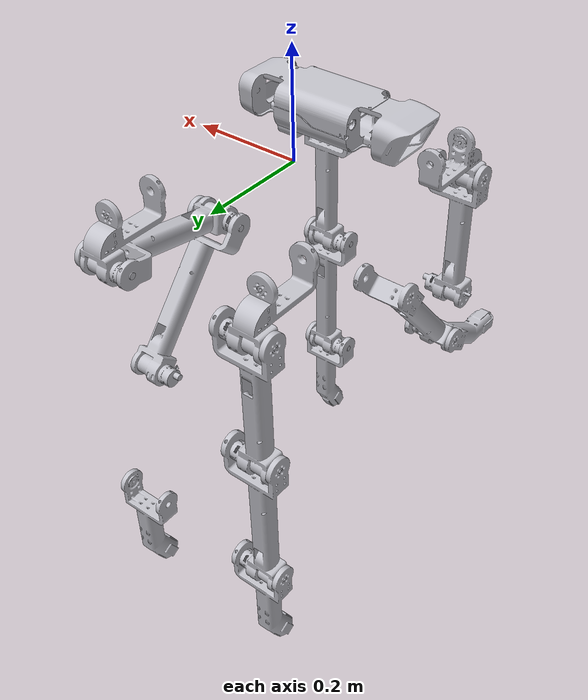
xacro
<?xml version="1.0" ?>
<robot name="quadruped" xmlns:xacro="http://www.ros.org/wiki/xacro">

<xacro:include filename="$(find quadruped_description)/urdf/materials.xacro" />
<xacro:include filename="$(find quadruped_description)/urdf/quadruped.trans" />
<xacro:include filename="$(find quadruped_description)/urdf/quadruped.gazebo" />
<link name="base_link">
  <inertial>
    <origin rpy="0 0 0" xyz="-3.431576713324414e-17 2.610567498014317e-16 0.04324730691236673"/>
    <mass value="29.384744866709624"/>
    <inertia ixx="1.089951" ixy="-1.1e-05" ixz="0.0" iyy="0.445316" iyz="0.0" izz="1.461435"/>
  </inertial>
  <visual>
    <origin rpy="0 0 0" xyz="0 0 0"/>
    <geometry>
      <mesh filename="package://quadruped_description/meshes/base_link.stl" scale="0.001 0.001 0.001"/>
    </geometry>
    <material name="silver_default"/>
  </visual>
  <collision>
    <origin rpy="0 0 0" xyz="0 0 0"/>
    <geometry>
      <mesh filename="package://quadruped_description/meshes/base_link.stl" scale="0.001 0.001 0.001"/>
    </geometry>
  </collision>
</link>

<link name="link1FrontRight_1">
  <inertial>
    <origin rpy="0 0 0" xyz="0.006657525670384218 -0.008851869868314433 -0.0682785415205543"/>
    <mass value="0.6959462012084651"/>
    <inertia ixx="0.001039" ixy="4.5e-05" ixz="5.5e-05" iyy="0.000651" iyz="-0.000304" izz="0.000853"/>
  </inertial>
  <visual>
    <origin rpy="0 0 0" xyz="0.155 0.272 0.028"/>
    <geometry>
      <mesh filename="package://quadruped_description/meshes/link1FrontRight_1.stl" scale="0.001 0.001 0.001"/>
    </geometry>
    <material name="silver_default"/>
  </visual>
  <collision>
    <origin rpy="0 0 0" xyz="0.155 0.272 0.028"/>
    <geometry>
      <mesh filename="package://quadruped_description/meshes/link1FrontRight_1.stl" scale="0.001 0.001 0.001"/>
    </geometry>
  </collision>
</link>

<link name="link1BackLeft_1">
  <inertial>
    <origin rpy="0 0 0" xyz="-0.006657525670384523 0.008851869868314655 -0.068278541520555"/>
    <mass value="0.6959462012084651"/>
    <inertia ixx="0.001039" ixy="4.5e-05" ixz="-5.5e-05" iyy="0.000651" iyz="0.000304" izz="0.000853"/>
  </inertial>
  <visual>
    <origin rpy="0 0 0" xyz="-0.155 -0.272 0.028"/>
    <geometry>
      <mesh filename="package://quadruped_description/meshes/link1BackLeft_1.stl" scale="0.001 0.001 0.001"/>
    </geometry>
    <material name="silver_default"/>
  </visual>
  <collision>
    <origin rpy="0 0 0" xyz="-0.155 -0.272 0.028"/>
    <geometry>
      <mesh filename="package://quadruped_description/meshes/link1BackLeft_1.stl" scale="0.001 0.001 0.001"/>
    </geometry>
  </collision>
</link>

<link name="link1FrontLeft_1">
  <inertial>
    <origin rpy="0 0 0" xyz="-0.006632742807460124 -0.008892294774752285 -0.06827854152055422"/>
    <mass value="0.6959462012084651"/>
    <inertia ixx="0.00104" ixy="-4.6e-05" ixz="-5.5e-05" iyy="0.000651" iyz="-0.000304" izz="0.000853"/>
  </inertial>
  <visual>
    <origin rpy="0 0 0" xyz="-0.155 0.272 0.028"/>
    <geometry>
      <mesh filename="package://quadruped_description/meshes/link1FrontLeft_1.stl" scale="0.001 0.001 0.001"/>
    </geometry>
    <material name="silver_default"/>
  </visual>
  <collision>
    <origin rpy="0 0 0" xyz="-0.155 0.272 0.028"/>
    <geometry>
      <mesh filename="package://quadruped_description/meshes/link1FrontLeft_1.stl" scale="0.001 0.001 0.001"/>
    </geometry>
  </collision>
</link>

<link name="link1BackRight_1">
  <inertial>
    <origin rpy="0 0 0" xyz="0.006632742807465342 0.008892294774752674 -0.06827854152054838"/>
    <mass value="0.6959462012084651"/>
    <inertia ixx="0.00104" ixy="-4.6e-05" ixz="5.5e-05" iyy="0.000651" iyz="0.000304" izz="0.000853"/>
  </inertial>
  <visual>
    <origin rpy="0 0 0" xyz="0.155 -0.272 0.028"/>
    <geometry>
      <mesh filename="package://quadruped_description/meshes/link1BackRight_1.stl" scale="0.001 0.001 0.001"/>
    </geometry>
    <material name="silver_default"/>
  </visual>
  <collision>
    <origin rpy="0 0 0" xyz="0.155 -0.272 0.028"/>
    <geometry>
      <mesh filename="package://quadruped_description/meshes/link1BackRight_1.stl" scale="0.001 0.001 0.001"/>
    </geometry>
  </collision>
</link>

<link name="link2FrontRight_1">
  <inertial>
    <origin rpy="0 0 0" xyz="0.048356898374047996 3.830943160310074e-06 -0.2053710415322904"/>
    <mass value="0.8659841478355499"/>
    <inertia ixx="0.00672" ixy="-0.0" ixz="0.000112" iyy="0.007032" iyz="-1e-05" izz="0.000496"/>
  </inertial>
  <visual>
    <origin rpy="0 0 0" xyz="0.196988 0.2908 0.100978"/>
    <geometry>
      <mesh filename="package://quadruped_description/meshes/link2FrontRight_1.stl" scale="0.001 0.001 0.001"/>
    </geometry>
    <material name="silver_default"/>
  </visual>
  <collision>
    <origin rpy="0 0 0" xyz="0.196988 0.2908 0.100978"/>
    <geometry>
      <mesh filename="package://quadruped_description/meshes/link2FrontRight_1.stl" scale="0.001 0.001 0.001"/>
    </geometry>
  </collision>
</link>

<link name="link2BackLeft_1">
  <inertial>
    <origin rpy="0 0 0" xyz="-0.048356898374071394 -3.8309431600880295e-06 -0.20537104153228847"/>
    <mass value="0.8659841478355499"/>
    <inertia ixx="0.00672" ixy="-0.0" ixz="-0.000112" iyy="0.007032" iyz="1e-05" izz="0.000496"/>
  </inertial>
  <visual>
    <origin rpy="0 0 0" xyz="-0.196988 -0.2908 0.100978"/>
    <geometry>
      <mesh filename="package://quadruped_description/meshes/link2BackLeft_1.stl" scale="0.001 0.001 0.001"/>
    </geometry>
    <material name="silver_default"/>
  </visual>
  <collision>
    <origin rpy="0 0 0" xyz="-0.196988 -0.2908 0.100978"/>
    <geometry>
      <mesh filename="package://quadruped_description/meshes/link2BackLeft_1.stl" scale="0.001 0.001 0.001"/>
    </geometry>
  </collision>
</link>

<link name="link2FrontLeft_1">
  <inertial>
    <origin rpy="0 0 0" xyz="-0.048355899630154936 -3.830943159754963e-06 -0.20537104153228886"/>
    <mass value="0.8659841478355499"/>
    <inertia ixx="0.00672" ixy="-0.0" ixz="-0.000112" iyy="0.007032" iyz="-1.1e-05" izz="0.000496"/>
  </inertial>
  <visual>
    <origin rpy="0 0 0" xyz="-0.197012 0.2908 0.100978"/>
    <geometry>
      <mesh filename="package://quadruped_description/meshes/link2FrontLeft_1.stl" scale="0.001 0.001 0.001"/>
    </geometry>
    <material name="silver_default"/>
  </visual>
  <collision>
    <origin rpy="0 0 0" xyz="-0.197012 0.2908 0.100978"/>
    <geometry>
      <mesh filename="package://quadruped_description/meshes/link2FrontLeft_1.stl" scale="0.001 0.001 0.001"/>
    </geometry>
  </collision>
</link>

<link name="link2BackRight_1">
  <inertial>
    <origin rpy="0 0 0" xyz="0.04835589963014089 3.830943159977007e-06 -0.2053710415322857"/>
    <mass value="0.8659841478355499"/>
    <inertia ixx="0.00672" ixy="-0.0" ixz="0.000112" iyy="0.007032" iyz="1.1e-05" izz="0.000496"/>
  </inertial>
  <visual>
    <origin rpy="0 0 0" xyz="0.197012 -0.2908 0.100978"/>
    <geometry>
      <mesh filename="package://quadruped_description/meshes/link2BackRight_1.stl" scale="0.001 0.001 0.001"/>
    </geometry>
    <material name="silver_default"/>
  </visual>
  <collision>
    <origin rpy="0 0 0" xyz="0.197012 -0.2908 0.100978"/>
    <geometry>
      <mesh filename="package://quadruped_description/meshes/link2BackRight_1.stl" scale="0.001 0.001 0.001"/>
    </geometry>
  </collision>
</link>

<link name="link3FrontRight_1">
  <inertial>
    <origin rpy="0 0 0" xyz="0.048133393092814 2.7563511130757057e-06 -0.22442742342969896"/>
    <mass value="0.8975642770404472"/>
    <inertia ixx="0.00868" ixy="-0.0" ixz="0.000137" iyy="0.008993" iyz="1.4e-05" izz="0.000506"/>
  </inertial>
  <visual>
    <origin rpy="0 0 0" xyz="0.196988 0.290812 0.357157"/>
    <geometry>
      <mesh filename="package://quadruped_description/meshes/link3FrontRight_1.stl" scale="0.001 0.001 0.001"/>
    </geometry>
    <material name="silver_default"/>
  </visual>
  <collision>
    <origin rpy="0 0 0" xyz="0.196988 0.290812 0.357157"/>
    <geometry>
      <mesh filename="package://quadruped_description/meshes/link3FrontRight_1.stl" scale="0.001 0.001 0.001"/>
    </geometry>
  </collision>
</link>

<link name="link3BackLeft__1">
  <inertial>
    <origin rpy="0 0 0" xyz="-0.04813239309294695 -2.7563511130201945e-06 -0.22442742342968608"/>
    <mass value="0.8975642770404472"/>
    <inertia ixx="0.00868" ixy="-0.0" ixz="-0.000137" iyy="0.008993" iyz="-1.4e-05" izz="0.000506"/>
  </inertial>
  <visual>
    <origin rpy="0 0 0" xyz="-0.196987 -0.290812 0.357157"/>
    <geometry>
      <mesh filename="package://quadruped_description/meshes/link3BackLeft__1.stl" scale="0.001 0.001 0.001"/>
    </geometry>
    <material name="silver_default"/>
  </visual>
  <collision>
    <origin rpy="0 0 0" xyz="-0.196987 -0.290812 0.357157"/>
    <geometry>
      <mesh filename="package://quadruped_description/meshes/link3BackLeft__1.stl" scale="0.001 0.001 0.001"/>
    </geometry>
  </collision>
</link>

<link name="link3FrontLeft_1">
  <inertial>
    <origin rpy="0 0 0" xyz="-0.04813211460166722 -3.7563511127713944e-06 -0.22442742342969096"/>
    <mass value="0.8975642770404472"/>
    <inertia ixx="0.00868" ixy="-0.0" ixz="-0.000137" iyy="0.008993" iyz="1.3e-05" izz="0.000506"/>
  </inertial>
  <visual>
    <origin rpy="0 0 0" xyz="-0.197012 0.290787 0.357157"/>
    <geometry>
      <mesh filename="package://quadruped_description/meshes/link3FrontLeft_1.stl" scale="0.001 0.001 0.001"/>
    </geometry>
    <material name="silver_default"/>
  </visual>
  <collision>
    <origin rpy="0 0 0" xyz="-0.197012 0.290787 0.357157"/>
    <geometry>
      <mesh filename="package://quadruped_description/meshes/link3FrontLeft_1.stl" scale="0.001 0.001 0.001"/>
    </geometry>
  </collision>
</link>

<link name="link3BackRight_1">
  <inertial>
    <origin rpy="0 0 0" xyz="0.04813311460158873 3.7563511128824167e-06 -0.22442742342969418"/>
    <mass value="0.8975642770404472"/>
    <inertia ixx="0.00868" ixy="-0.0" ixz="0.000137" iyy="0.008993" iyz="-1.3e-05" izz="0.000506"/>
  </inertial>
  <visual>
    <origin rpy="0 0 0" xyz="0.197013 -0.290787 0.357157"/>
    <geometry>
      <mesh filename="package://quadruped_description/meshes/link3BackRight_1.stl" scale="0.001 0.001 0.001"/>
    </geometry>
    <material name="silver_default"/>
  </visual>
  <collision>
    <origin rpy="0 0 0" xyz="0.197013 -0.290787 0.357157"/>
    <geometry>
      <mesh filename="package://quadruped_description/meshes/link3BackRight_1.stl" scale="0.001 0.001 0.001"/>
    </geometry>
  </collision>
</link>

<link name="link4FrontRight_1">
  <inertial>
    <origin rpy="0 0 0" xyz="0.044210366433339116 -0.006254524034632503 -0.10914906216532572"/>
    <mass value="0.3651188269789837"/>
    <inertia ixx="0.001791" ixy="-5e-06" ixz="-7.1e-05" iyy="0.0019" iyz="-0.000199" izz="0.000283"/>
  </inertial>
  <visual>
    <origin rpy="0 0 0" xyz="0.196988 0.290825 0.641575"/>
    <geometry>
      <mesh filename="package://quadruped_description/meshes/link4FrontRight_1.stl" scale="0.001 0.001 0.001"/>
    </geometry>
    <material name="silver_default"/>
  </visual>
  <collision>
    <origin rpy="0 0 0" xyz="0.196988 0.290825 0.641575"/>
    <geometry>
      <mesh filename="package://quadruped_description/meshes/link4FrontRight_1.stl" scale="0.001 0.001 0.001"/>
    </geometry>
  </collision>
</link>

<link name="link4BackLeft_1">
  <inertial>
    <origin rpy="0 0 0" xyz="-0.04440935130290677 -0.006229937915568751 -0.10914906216527509"/>
    <mass value="0.3651188269789837"/>
    <inertia ixx="0.001791" ixy="5e-06" ixz="7.1e-05" iyy="0.0019" iyz="-0.000199" izz="0.000283"/>
  </inertial>
  <visual>
    <origin rpy="0 0 0" xyz="-0.196987 -0.290825 0.641575"/>
    <geometry>
      <mesh filename="package://quadruped_description/meshes/link4BackLeft_1.stl" scale="0.001 0.001 0.001"/>
    </geometry>
    <material name="silver_default"/>
  </visual>
  <collision>
    <origin rpy="0 0 0" xyz="-0.196987 -0.290825 0.641575"/>
    <geometry>
      <mesh filename="package://quadruped_description/meshes/link4BackLeft_1.stl" scale="0.001 0.001 0.001"/>
    </geometry>
  </collision>
</link>

<link name="link4FrontLeft_1">
  <inertial>
    <origin rpy="0 0 0" xyz="-0.044409351302732464 -0.006229937915568418 -0.10914906216529396"/>
    <mass value="0.3651188269789837"/>
    <inertia ixx="0.001791" ixy="5e-06" ixz="7.1e-05" iyy="0.0019" iyz="-0.000199" izz="0.000283"/>
  </inertial>
  <visual>
    <origin rpy="0 0 0" xyz="-0.197012 0.290775 0.641575"/>
    <geometry>
      <mesh filename="package://quadruped_description/meshes/link4FrontLeft_1.stl" scale="0.001 0.001 0.001"/>
    </geometry>
    <material name="silver_default"/>
  </visual>
  <collision>
    <origin rpy="0 0 0" xyz="-0.197012 0.290775 0.641575"/>
    <geometry>
      <mesh filename="package://quadruped_description/meshes/link4FrontLeft_1.stl" scale="0.001 0.001 0.001"/>
    </geometry>
  </collision>
</link>

<link name="link4FrontRight__1__1">
  <inertial>
    <origin rpy="0 0 0" xyz="0.04441036643334331 -0.006254524034632558 -0.10914906216531961"/>
    <mass value="0.3651188269789837"/>
    <inertia ixx="0.001791" ixy="-5e-06" ixz="-7.1e-05" iyy="0.0019" iyz="-0.000199" izz="0.000283"/>
  </inertial>
  <visual>
    <origin rpy="0 0 0" xyz="0.197013 -0.290775 0.641575"/>
    <geometry>
      <mesh filename="package://quadruped_description/meshes/link4FrontRight__1__1.stl" scale="0.001 0.001 0.001"/>
    </geometry>
    <material name="silver_default"/>
  </visual>
  <collision>
    <origin rpy="0 0 0" xyz="0.197013 -0.290775 0.641575"/>
    <geometry>
      <mesh filename="package://quadruped_description/meshes/link4FrontRight__1__1.stl" scale="0.001 0.001 0.001"/>
    </geometry>
  </collision>
</link>

<joint name="joint1FrontRight" type="continuous">
  <origin rpy="0 0 0" xyz="-0.155 -0.272 -0.028"/>
  <parent link="base_link"/>
  <child link="link1FrontRight_1"/>
  <axis xyz="0.0 -1.0 0.0"/>
</joint>

<joint name="joint1BackLeft" type="continuous">
  <origin rpy="0 0 0" xyz="0.155 0.272 -0.028"/>
  <parent link="base_link"/>
  <child link="link1BackLeft_1"/>
  <axis xyz="-0.0 1.0 -0.0"/>
</joint>

<joint name="joint1FrontLeft" type="continuous">
  <origin rpy="0 0 0" xyz="0.155 -0.272 -0.028"/>
  <parent link="base_link"/>
  <child link="link1FrontLeft_1"/>
  <axis xyz="-0.0 -1.0 -0.0"/>
</joint>

<joint name="joint1BackRight" type="continuous">
  <origin rpy="0 0 0" xyz="-0.155 0.272 -0.028"/>
  <parent link="base_link"/>
  <child link="link1BackRight_1"/>
  <axis xyz="-0.0 1.0 0.0"/>
</joint>

<joint name="joint2FrontRight" type="continuous">
  <origin rpy="0 0 0" xyz="-0.041988 -0.0188 -0.072978"/>
  <parent link="link1FrontRight_1"/>
  <child link="link2FrontRight_1"/>
  <axis xyz="-1.0 -0.0 0.0"/>
</joint>

<joint name="joint2BackLeft" type="continuous">
  <origin rpy="0 0 0" xyz="0.041988 0.0188 -0.072978"/>
  <parent link="link1BackLeft_1"/>
  <child link="link2BackLeft_1"/>
  <axis xyz="1.0 0.0 -0.0"/>
</joint>

<joint name="joint2FrontLeft" type="continuous">
  <origin rpy="0 0 0" xyz="0.042012 -0.0188 -0.072978"/>
  <parent link="link1FrontLeft_1"/>
  <child link="link2FrontLeft_1"/>
  <axis xyz="1.0 -0.0 -0.0"/>
</joint>

<joint name="joint2BackRight" type="continuous">
  <origin rpy="0 0 0" xyz="-0.042012 0.0188 -0.072978"/>
  <parent link="link1BackRight_1"/>
  <child link="link2BackRight_1"/>
  <axis xyz="-1.0 0.0 -0.0"/>
</joint>

<joint name="joint3FrontRight" type="continuous">
  <origin rpy="0 0 0" xyz="0.0 -1.2e-05 -0.256179"/>
  <parent link="link2FrontRight_1"/>
  <child link="link3FrontRight_1"/>
  <axis xyz="-1.0 0.0 0.0"/>
</joint>

<joint name="joint3BackLeft" type="continuous">
  <origin rpy="0 0 0" xyz="-1e-06 1.2e-05 -0.256179"/>
  <parent link="link2BackLeft_1"/>
  <child link="link3BackLeft__1"/>
  <axis xyz="1.0 -0.0 -0.0"/>
</joint>

<joint name="joint3FrontLeft" type="continuous">
  <origin rpy="0 0 0" xyz="0.0 1.3e-05 -0.256179"/>
  <parent link="link2FrontLeft_1"/>
  <child link="link3FrontLeft_1"/>
  <axis xyz="1.0 -0.0 -0.0"/>
</joint>

<joint name="joint3BackRight" type="continuous">
  <origin rpy="0 0 0" xyz="-1e-06 -1.3e-05 -0.256179"/>
  <parent link="link2BackRight_1"/>
  <child link="link3BackRight_1"/>
  <axis xyz="-1.0 0.0 -0.0"/>
</joint>

<joint name="joint4FrontRight" type="continuous">
  <origin rpy="0 0 0" xyz="0.0 -1.3e-05 -0.284418"/>
  <parent link="link3FrontRight_1"/>
  <child link="link4FrontRight_1"/>
  <axis xyz="-1.0 0.0 0.0"/>
</joint>

<joint name="joint4BackLeft" type="continuous">
  <origin rpy="0 0 0" xyz="0.0 1.3e-05 -0.284418"/>
  <parent link="link3BackLeft__1"/>
  <child link="link4BackLeft_1"/>
  <axis xyz="1.0 -0.0 -0.0"/>
</joint>

<joint name="joint4FrontLeft" type="continuous">
  <origin rpy="0 0 0" xyz="0.0 1.2e-05 -0.284418"/>
  <parent link="link3FrontLeft_1"/>
  <child link="link4FrontLeft_1"/>
  <axis xyz="1.0 -0.0 -0.0"/>
</joint>

<joint name="joint4BackRight" type="continuous">
  <origin rpy="0 0 0" xyz="0.0 -1.2e-05 -0.284418"/>
  <parent link="link3BackRight_1"/>
  <child link="link4FrontRight__1__1"/>
  <axis xyz="-1.0 0.0 -0.0"/>
</joint>

</robot>

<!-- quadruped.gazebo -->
<robot name="quadruped" xmlns:xacro="http://www.ros.org/wiki/xacro" >

<xacro:property name="body_color" value="Gazebo/Silver" />

<gazebo>
  <plugin filename="libgazebo_ros_control.so" name="control"/>
</gazebo>
<gazebo reference="base_link">
  <material>${body_color}</material>
  <mu1>0.2</mu1>
  <mu2>0.2</mu2>
  <selfCollide>true</selfCollide>
  <gravity>true</gravity>
</gazebo>

<gazebo reference="link1FrontRight_1">
  <material>${body_color}</material>
  <mu1>0.2</mu1>
  <mu2>0.2</mu2>
  <selfCollide>true</selfCollide>
</gazebo>

<gazebo reference="link1BackLeft_1">
  <material>${body_color}</material>
  <mu1>0.2</mu1>
  <mu2>0.2</mu2>
  <selfCollide>true</selfCollide>
</gazebo>

<gazebo reference="link1FrontLeft_1">
  <material>${body_color}</material>
  <mu1>0.2</mu1>
  <mu2>0.2</mu2>
  <selfCollide>true</selfCollide>
</gazebo>

<gazebo reference="link1BackRight_1">
  <material>${body_color}</material>
  <mu1>0.2</mu1>
  <mu2>0.2</mu2>
  <selfCollide>true</selfCollide>
</gazebo>

<gazebo reference="link2FrontRight_1">
  <material>${body_color}</material>
  <mu1>0.2</mu1>
  <mu2>0.2</mu2>
  <selfCollide>true</selfCollide>
</gazebo>

<gazebo reference="link2BackLeft_1">
  <material>${body_color}</material>
  <mu1>0.2</mu1>
  <mu2>0.2</mu2>
  <selfCollide>true</selfCollide>
</gazebo>

<gazebo reference="link2FrontLeft_1">
  <material>${body_color}</material>
  <mu1>0.2</mu1>
  <mu2>0.2</mu2>
  <selfCollide>true</selfCollide>
</gazebo>

<gazebo reference="link2BackRight_1">
  <material>${body_color}</material>
  <mu1>0.2</mu1>
  <mu2>0.2</mu2>
  <selfCollide>true</selfCollide>
</gazebo>

<gazebo reference="link3FrontRight_1">
  <material>${body_color}</material>
  <mu1>0.2</mu1>
  <mu2>0.2</mu2>
  <selfCollide>true</selfCollide>
</gazebo>

<gazebo reference="link3BackLeft__1">
  <material>${body_color}</material>
  <mu1>0.2</mu1>
  <mu2>0.2</mu2>
  <selfCollide>true</selfCollide>
</gazebo>

<gazebo reference="link3FrontLeft_1">
  <material>${body_color}</material>
  <mu1>0.2</mu1>
  <mu2>0.2</mu2>
  <selfCollide>true</selfCollide>
</gazebo>

<gazebo reference="link3BackRight_1">
  <material>${body_color}</material>
  <mu1>0.2</mu1>
  <mu2>0.2</mu2>
  <selfCollide>true</selfCollide>
</gazebo>

<gazebo reference="link4FrontRight_1">
  <material>${body_color}</material>
  <mu1>0.2</mu1>
  <mu2>0.2</mu2>
  <selfCollide>true</selfCollide>
</gazebo>

<gazebo reference="link4BackLeft_1">
  <material>${body_color}</material>
  <mu1>0.2</mu1>
  <mu2>0.2</mu2>
  <selfCollide>true</selfCollide>
</gazebo>

<gazebo reference="link4FrontLeft_1">
  <material>${body_color}</material>
  <mu1>0.2</mu1>
  <mu2>0.2</mu2>
  <selfCollide>true</selfCollide>
</gazebo>

<gazebo reference="link4FrontRight__1__1">
  <material>${body_color}</material>
  <mu1>0.2</mu1>
  <mu2>0.2</mu2>
  <selfCollide>true</selfCollide>
</gazebo>

</robot>
